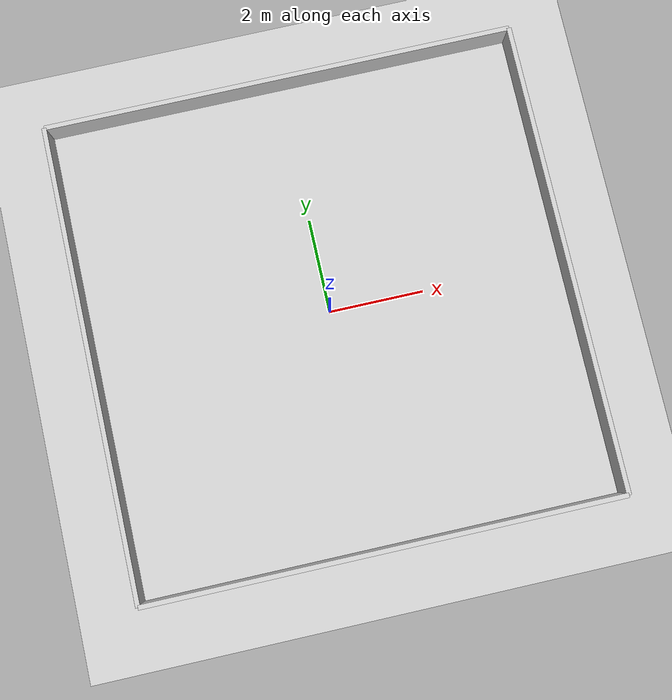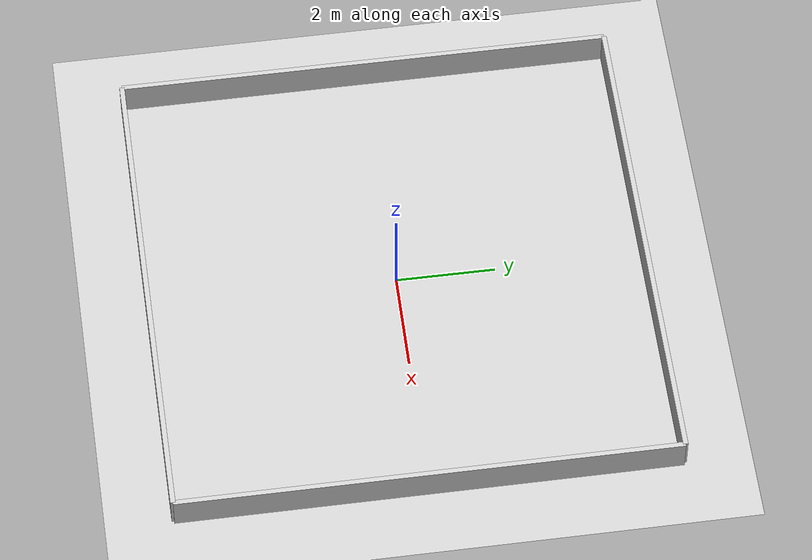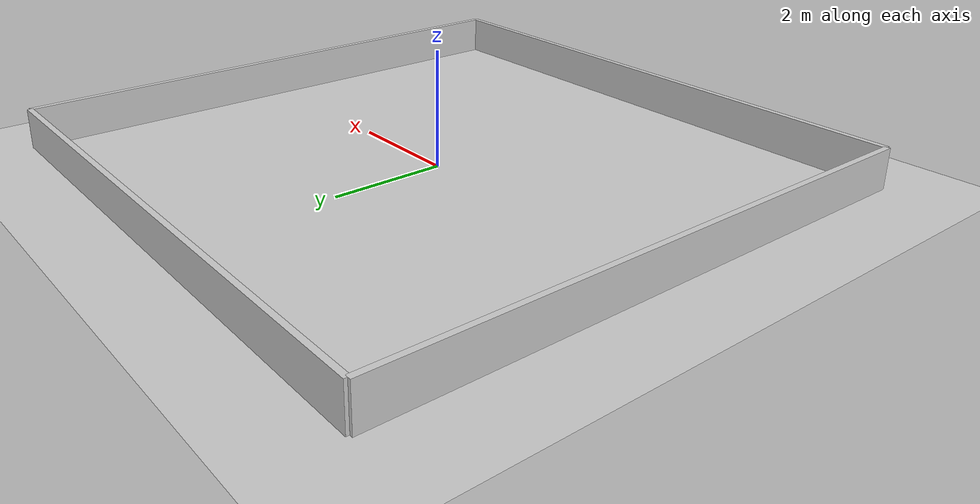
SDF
<?xml version="1.0" ?>
<sdf version="1.6">
  <world name="empty_with_walls">
    <include>
      <uri>model://ground_plane</uri>
    </include>
    <include>
      <uri>model://sun</uri>
    </include>

    <!-- North wall -->
    <model name="north_wall">
      <static>true</static>
      <link name="link">
        <collision name="collision">
          <geometry>
            <box><size>10 0.1 0.7</size></box>
          </geometry>
        </collision>
        <visual name="visual">
          <geometry>
            <box><size>10 0.1 0.7</size></box>
          </geometry>
          <material>
            <ambient>0.8 0.8 0.8 1</ambient>
          </material>
        </visual>
        <pose>0 5 0.35 0 0 0</pose>
      </link>
    </model>

    <!-- South wall -->
    <model name="south_wall">
      <static>true</static>
      <link name="link">
        <collision name="collision">
          <geometry>
            <box><size>10 0.1 0.7</size></box>
          </geometry>
        </collision>
        <visual name="visual">
          <geometry>
            <box><size>10 0.1 0.7</size></box>
          </geometry>
          <material>
            <ambient>0.8 0.8 0.8 1</ambient>
          </material>
        </visual>
        <pose>0 -5 0.35 0 0 0</pose>
      </link>
    </model>

    <!-- East wall -->
    <model name="east_wall">
      <static>true</static>
      <link name="link">
        <collision name="collision">
          <geometry>
            <box><size>0.1 10 0.7</size></box>
          </geometry>
        </collision>
        <visual name="visual">
          <geometry>
            <box><size>0.1 10 0.7</size></box>
          </geometry>
          <material>
            <ambient>0.8 0.8 0.8 1</ambient>
          </material>
        </visual>
        <pose>5 0 0.35 0 0 0</pose>
      </link>
    </model>

    <!-- West wall -->
    <model name="west_wall">
      <static>true</static>
      <link name="link">
        <collision name="collision">
          <geometry>
            <box><size>0.1 10 0.7</size></box>
          </geometry>
        </collision>
        <visual name="visual">
          <geometry>
            <box><size>0.1 10 0.7</size></box>
          </geometry>
          <material>
            <ambient>0.8 0.8 0.8 1</ambient>
          </material>
        </visual>
        <pose>-5 0 0.35 0 0 0</pose>
      </link>
    </model>

  </world>
</sdf>
